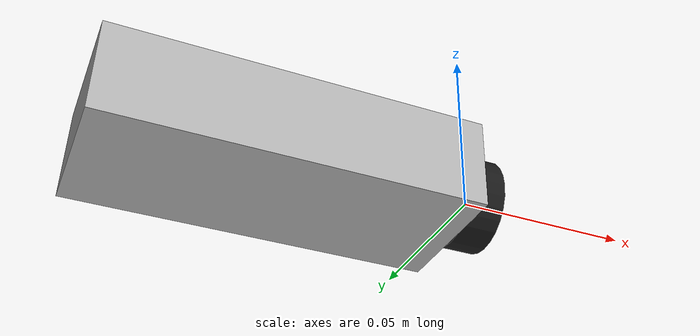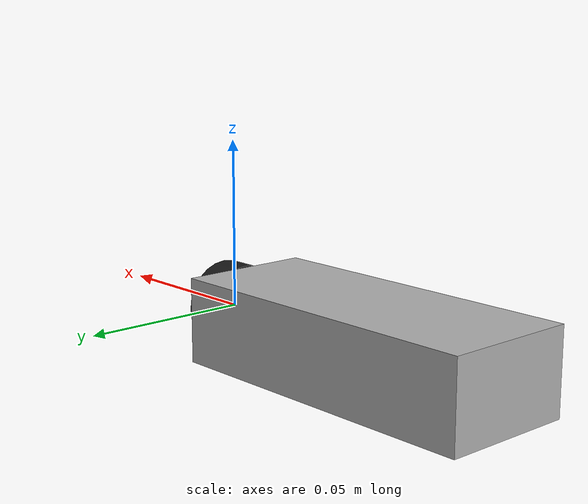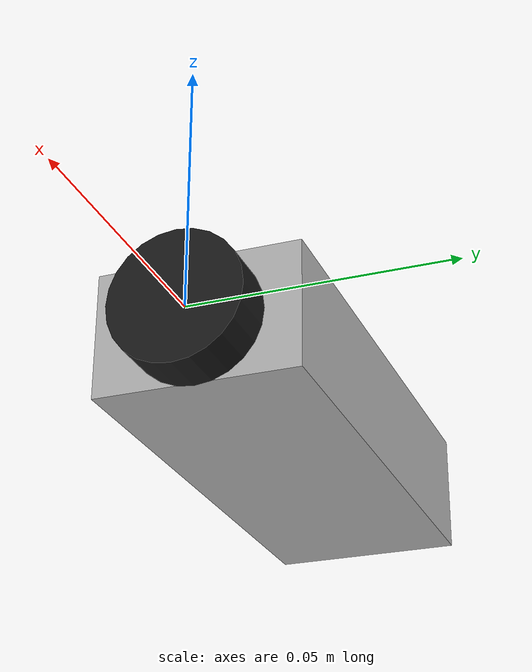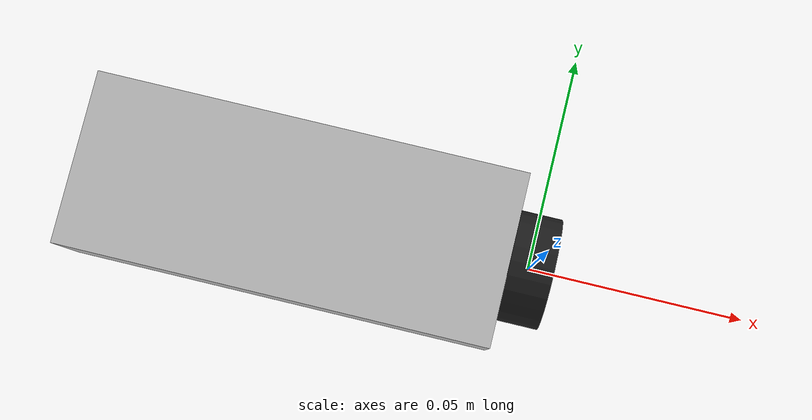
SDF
<?xml version="1.0" ?>
<sdf version="1.4">
  <model name="cam_robot">
    <static>true</static>
    <pose>0 0 0 0 0 0</pose>
    <link name="camera_link">
      <visual name="visual">
        <pose>-0.055 0 0 0 0 0</pose>
        <geometry>
          <box>
            <size>0.1 0.04 0.025</size>
          </box>
        </geometry>
        <material>
          <ambient>0.7 0.7 0.7 1</ambient>
          <diffuse>0.7 0.7 0.7 1</diffuse>
          <specular>0.1 0.1 0.1 1</specular>
          <emissive>0 0 0 0</emissive>
        </material>
      </visual>
      <visual name="visual">
        <pose>0 0 0 0 1.57 0</pose>
        <geometry>
          <cylinder>
            <radius>0.013</radius>
            <length>0.01</length>
          </cylinder>
        </geometry>
        <material>
          <ambient>0.1 0.1 0.1 1</ambient>
          <diffuse>0.1 0.1 0.1 1</diffuse>
          <specular>0.1 0.1 0.1 1</specular>
          <emissive>0 0 0 0</emissive>
        </material>
      </visual>
      <sensor name="cam" type="camera">
        <camera>
          <horizontal_fov>1.047</horizontal_fov>
          <image>
            <width>320</width>
            <height>240</height>
            <format>R8G8B8</format>
          </image>
          <clip>
            <near>0.1</near>
            <far>5.0</far>
          </clip>
        </camera>
        <update_rate>15.0</update_rate>
        <plugin filename="libgazebo_ros_camera.so" name="cam">
          <cameraName>camera</cameraName>
          <imageTopicName>image_raw</imageTopicName>
          <cameraInfoTopicName>camera_info</cameraInfoTopicName>
          <frameName>camera_link</frameName>
        </plugin>
      </sensor>
    </link>
  </model>
</sdf>
